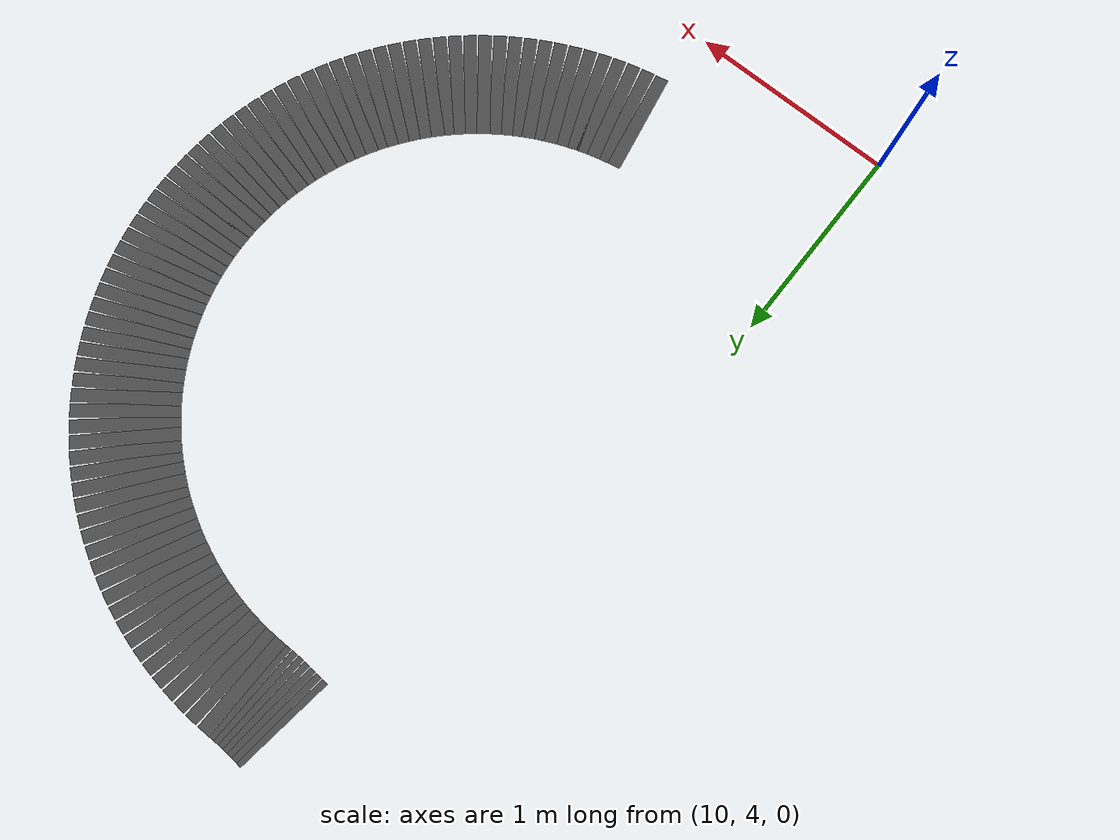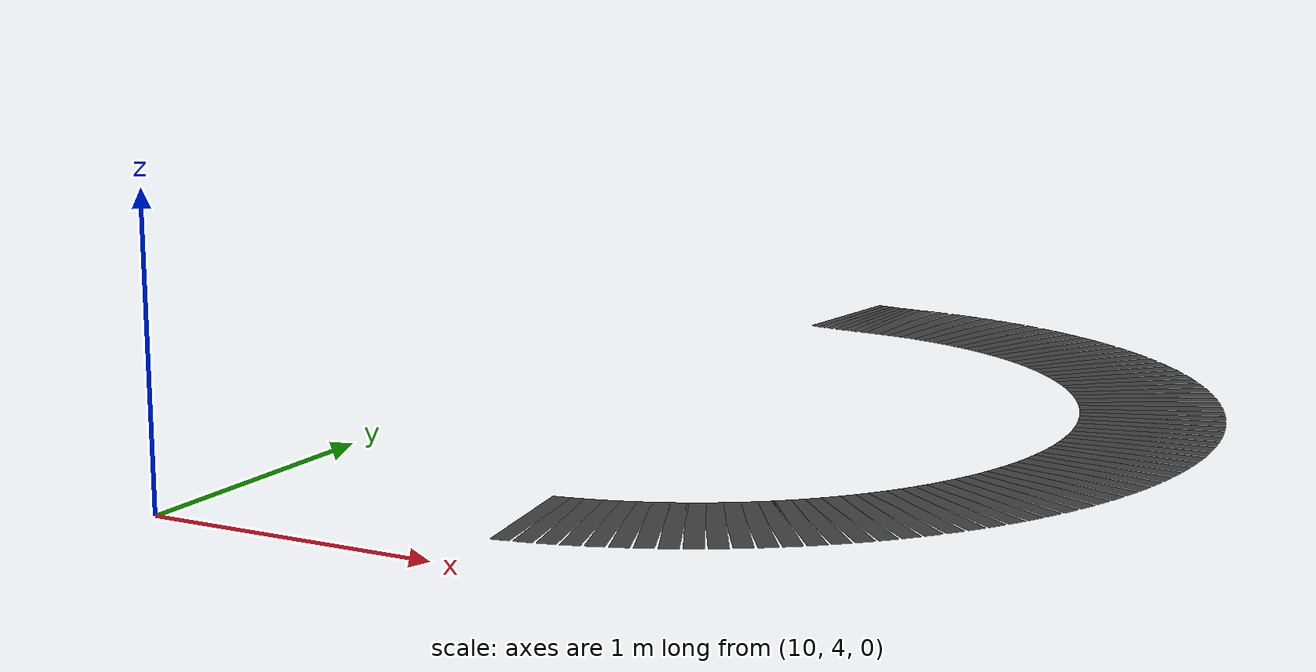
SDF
<sdf version="1.7">
 <model name="default">
  <model name="road_seg_63">
   <static>1</static>
   <link name="road_link">
    <visual name="road_visual">
     <geometry><box><size>0.062632 0.5 0.0001</size></box></geometry>
     <material>
      <script>
       <uri>model://road_material/materials/scripts</uri>
       <uri>model://road_material/materials/textures</uri>
       <name>MyRoad/Road</name>
      </script>
     </material>
    </visual>
    <collision name="road_collision"><geometry><box><size>0.062632 0.5 0.0001</size></box></geometry></collision>
   </link>
   <pose>11.0055 4.52546 0 0 -0 0.178951</pose>
  </model>
  <model name="road_seg_64">
   <static>1</static>
   <link name="road_link">
    <visual name="road_visual">
     <geometry><box><size>0.062632 0.5 0.0001</size></box></geometry>
     <material>
      <script>
       <uri>model://road_material/materials/scripts</uri>
       <uri>model://road_material/materials/textures</uri>
       <name>MyRoad/Road</name>
      </script>
     </material>
    </visual>
    <collision name="road_collision"><geometry><box><size>0.062632 0.5 0.0001</size></box></geometry></collision>
   </link>
   <pose>11.0669 4.53783 0 0 -0 0.218718</pose>
  </model>
  <model name="road_seg_65">
   <static>1</static>
   <link name="road_link">
    <visual name="road_visual">
     <geometry><box><size>0.062632 0.5 0.0001</size></box></geometry>
     <material>
      <script>
       <uri>model://road_material/materials/scripts</uri>
       <uri>model://road_material/materials/textures</uri>
       <name>MyRoad/Road</name>
      </script>
     </material>
    </visual>
    <collision name="road_collision"><geometry><box><size>0.062632 0.5 0.0001</size></box></geometry></collision>
   </link>
   <pose>11.1278 4.55263 0 0 -0 0.258485</pose>
  </model>
  <model name="road_seg_66">
   <static>1</static>
   <link name="road_link">
    <visual name="road_visual">
     <geometry><box><size>0.062632 0.5 0.0001</size></box></geometry>
     <material>
      <script>
       <uri>model://road_material/materials/scripts</uri>
       <uri>model://road_material/materials/textures</uri>
       <name>MyRoad/Road</name>
      </script>
     </material>
    </visual>
    <collision name="road_collision"><geometry><box><size>0.062632 0.5 0.0001</size></box></geometry></collision>
   </link>
   <pose>11.188 4.56983 0 0 -0 0.298252</pose>
  </model>
  <model name="road_seg_67">
   <static>1</static>
   <link name="road_link">
    <visual name="road_visual">
     <geometry><box><size>0.062632 0.5 0.0001</size></box></geometry>
     <material>
      <script>
       <uri>model://road_material/materials/scripts</uri>
       <uri>model://road_material/materials/textures</uri>
       <name>MyRoad/Road</name>
      </script>
     </material>
    </visual>
    <collision name="road_collision"><geometry><box><size>0.062632 0.5 0.0001</size></box></geometry></collision>
   </link>
   <pose>11.2475 4.58942 0 0 -0 0.338019</pose>
  </model>
  <model name="road_seg_68">
   <static>1</static>
   <link name="road_link">
    <visual name="road_visual">
     <geometry><box><size>0.062632 0.5 0.0001</size></box></geometry>
     <material>
      <script>
       <uri>model://road_material/materials/scripts</uri>
       <uri>model://road_material/materials/textures</uri>
       <name>MyRoad/Road</name>
      </script>
     </material>
    </visual>
    <collision name="road_collision"><geometry><box><size>0.062632 0.5 0.0001</size></box></geometry></collision>
   </link>
   <pose>11.3061 4.61136 0 0 -0 0.377786</pose>
  </model>
  <model name="road_seg_69">
   <static>1</static>
   <link name="road_link">
    <visual name="road_visual">
     <geometry><box><size>0.062632 0.5 0.0001</size></box></geometry>
     <material>
      <script>
       <uri>model://road_material/materials/scripts</uri>
       <uri>model://road_material/materials/textures</uri>
       <name>MyRoad/Road</name>
      </script>
     </material>
    </visual>
    <collision name="road_collision"><geometry><box><size>0.062632 0.5 0.0001</size></box></geometry></collision>
   </link>
   <pose>11.3638 4.63561 0 0 -0 0.417553</pose>
  </model>
  <model name="road_seg_70">
   <static>1</static>
   <link name="road_link">
    <visual name="road_visual">
     <geometry><box><size>0.062632 0.5 0.0001</size></box></geometry>
     <material>
      <script>
       <uri>model://road_material/materials/scripts</uri>
       <uri>model://road_material/materials/textures</uri>
       <name>MyRoad/Road</name>
      </script>
     </material>
    </visual>
    <collision name="road_collision"><geometry><box><size>0.062632 0.5 0.0001</size></box></geometry></collision>
   </link>
   <pose>11.4206 4.66214 0 0 -0 0.45732</pose>
  </model>
  <model name="road_seg_71">
   <static>1</static>
   <link name="road_link">
    <visual name="road_visual">
     <geometry><box><size>0.062632 0.5 0.0001</size></box></geometry>
     <material>
      <script>
       <uri>model://road_material/materials/scripts</uri>
       <uri>model://road_material/materials/textures</uri>
       <name>MyRoad/Road</name>
      </script>
     </material>
    </visual>
    <collision name="road_collision"><geometry><box><size>0.062632 0.5 0.0001</size></box></geometry></collision>
   </link>
   <pose>11.4762 4.6909 0 0 -0 0.497087</pose>
  </model>
  <model name="road_seg_72">
   <static>1</static>
   <link name="road_link">
    <visual name="road_visual">
     <geometry><box><size>0.062632 0.5 0.0001</size></box></geometry>
     <material>
      <script>
       <uri>model://road_material/materials/scripts</uri>
       <uri>model://road_material/materials/textures</uri>
       <name>MyRoad/Road</name>
      </script>
     </material>
    </visual>
    <collision name="road_collision"><geometry><box><size>0.062632 0.5 0.0001</size></box></geometry></collision>
   </link>
   <pose>11.5306 4.72185 0 0 -0 0.536854</pose>
  </model>
  <model name="road_seg_73">
   <static>1</static>
   <link name="road_link">
    <visual name="road_visual">
     <geometry><box><size>0.062632 0.5 0.0001</size></box></geometry>
     <material>
      <script>
       <uri>model://road_material/materials/scripts</uri>
       <uri>model://road_material/materials/textures</uri>
       <name>MyRoad/Road</name>
      </script>
     </material>
    </visual>
    <collision name="road_collision"><geometry><box><size>0.062632 0.5 0.0001</size></box></geometry></collision>
   </link>
   <pose>11.5838 4.75494 0 0 -0 0.576621</pose>
  </model>
  <model name="road_seg_74">
   <static>1</static>
   <link name="road_link">
    <visual name="road_visual">
     <geometry><box><size>0.062632 0.5 0.0001</size></box></geometry>
     <material>
      <script>
       <uri>model://road_material/materials/scripts</uri>
       <uri>model://road_material/materials/textures</uri>
       <name>MyRoad/Road</name>
      </script>
     </material>
    </visual>
    <collision name="road_collision"><geometry><box><size>0.062632 0.5 0.0001</size></box></geometry></collision>
   </link>
   <pose>11.6356 4.79011 0 0 -0 0.616388</pose>
  </model>
  <model name="road_seg_75">
   <static>1</static>
   <link name="road_link">
    <visual name="road_visual">
     <geometry><box><size>0.062632 0.5 0.0001</size></box></geometry>
     <material>
      <script>
       <uri>model://road_material/materials/scripts</uri>
       <uri>model://road_material/materials/textures</uri>
       <name>MyRoad/Road</name>
      </script>
     </material>
    </visual>
    <collision name="road_collision"><geometry><box><size>0.062632 0.5 0.0001</size></box></geometry></collision>
   </link>
   <pose>11.686 4.82732 0 0 -0 0.656155</pose>
  </model>
  <model name="road_seg_76">
   <static>1</static>
   <link name="road_link">
    <visual name="road_visual">
     <geometry><box><size>0.062632 0.5 0.0001</size></box></geometry>
     <material>
      <script>
       <uri>model://road_material/materials/scripts</uri>
       <uri>model://road_material/materials/textures</uri>
       <name>MyRoad/Road</name>
      </script>
     </material>
    </visual>
    <collision name="road_collision"><geometry><box><size>0.062632 0.5 0.0001</size></box></geometry></collision>
   </link>
   <pose>11.7348 4.8665 0 0 -0 0.695922</pose>
  </model>
  <model name="road_seg_77">
   <static>1</static>
   <link name="road_link">
    <visual name="road_visual">
     <geometry><box><size>0.062632 0.5 0.0001</size></box></geometry>
     <material>
      <script>
       <uri>model://road_material/materials/scripts</uri>
       <uri>model://road_material/materials/textures</uri>
       <name>MyRoad/Road</name>
      </script>
     </material>
    </visual>
    <collision name="road_collision"><geometry><box><size>0.062632 0.5 0.0001</size></box></geometry></collision>
   </link>
   <pose>11.7821 4.9076 0 0 -0 0.735689</pose>
  </model>
  <model name="road_seg_78">
   <static>1</static>
   <link name="road_link">
    <visual name="road_visual">
     <geometry><box><size>0.062632 0.5 0.0001</size></box></geometry>
     <material>
      <script>
       <uri>model://road_material/materials/scripts</uri>
       <uri>model://road_material/materials/textures</uri>
       <name>MyRoad/Road</name>
      </script>
     </material>
    </visual>
    <collision name="road_collision"><geometry><box><size>0.062632 0.5 0.0001</size></box></geometry></collision>
   </link>
   <pose>11.8276 4.95053 0 0 -0 0.775456</pose>
  </model>
  <model name="road_seg_79">
   <static>1</static>
   <link name="road_link">
    <visual name="road_visual">
     <geometry><box><size>0.062632 0.5 0.0001</size></box></geometry>
     <material>
      <script>
       <uri>model://road_material/materials/scripts</uri>
       <uri>model://road_material/materials/textures</uri>
       <name>MyRoad/Road</name>
      </script>
     </material>
    </visual>
    <collision name="road_collision"><geometry><box><size>0.062632 0.5 0.0001</size></box></geometry></collision>
   </link>
   <pose>11.8715 4.99525 0 0 -0 0.815223</pose>
  </model>
  <model name="road_seg_80">
   <static>1</static>
   <link name="road_link">
    <visual name="road_visual">
     <geometry><box><size>0.062632 0.5 0.0001</size></box></geometry>
     <material>
      <script>
       <uri>model://road_material/materials/scripts</uri>
       <uri>model://road_material/materials/textures</uri>
       <name>MyRoad/Road</name>
      </script>
     </material>
    </visual>
    <collision name="road_collision"><geometry><box><size>0.062632 0.5 0.0001</size></box></geometry></collision>
   </link>
   <pose>11.9135 5.04168 0 0 -0 0.85499</pose>
  </model>
  <model name="road_seg_81">
   <static>1</static>
   <link name="road_link">
    <visual name="road_visual">
     <geometry><box><size>0.062632 0.5 0.0001</size></box></geometry>
     <material>
      <script>
       <uri>model://road_material/materials/scripts</uri>
       <uri>model://road_material/materials/textures</uri>
       <name>MyRoad/Road</name>
      </script>
     </material>
    </visual>
    <collision name="road_collision"><geometry><box><size>0.062632 0.5 0.0001</size></box></geometry></collision>
   </link>
   <pose>11.9536 5.08973 0 0 -0 0.894757</pose>
  </model>
  <model name="road_seg_82">
   <static>1</static>
   <link name="road_link">
    <visual name="road_visual">
     <geometry><box><size>0.062632 0.5 0.0001</size></box></geometry>
     <material>
      <script>
       <uri>model://road_material/materials/scripts</uri>
       <uri>model://road_material/materials/textures</uri>
       <name>MyRoad/Road</name>
      </script>
     </material>
    </visual>
    <collision name="road_collision"><geometry><box><size>0.062632 0.5 0.0001</size></box></geometry></collision>
   </link>
   <pose>11.9918 5.13935 0 0 -0 0.934524</pose>
  </model>
  <model name="road_seg_83">
   <static>1</static>
   <link name="road_link">
    <visual name="road_visual">
     <geometry><box><size>0.062632 0.5 0.0001</size></box></geometry>
     <material>
      <script>
       <uri>model://road_material/materials/scripts</uri>
       <uri>model://road_material/materials/textures</uri>
       <name>MyRoad/Road</name>
      </script>
     </material>
    </visual>
    <collision name="road_collision"><geometry><box><size>0.062632 0.5 0.0001</size></box></geometry></collision>
   </link>
   <pose>12.028 5.19045 0 0 -0 0.974291</pose>
  </model>
  <model name="road_seg_84">
   <static>1</static>
   <link name="road_link">
    <visual name="road_visual">
     <geometry><box><size>0.062632 0.5 0.0001</size></box></geometry>
     <material>
      <script>
       <uri>model://road_material/materials/scripts</uri>
       <uri>model://road_material/materials/textures</uri>
       <name>MyRoad/Road</name>
      </script>
     </material>
    </visual>
    <collision name="road_collision"><geometry><box><size>0.062632 0.5 0.0001</size></box></geometry></collision>
   </link>
   <pose>12.0622 5.24294 0 0 -0 1.01406</pose>
  </model>
  <model name="road_seg_85">
   <static>1</static>
   <link name="road_link">
    <visual name="road_visual">
     <geometry><box><size>0.062632 0.5 0.0001</size></box></geometry>
     <material>
      <script>
       <uri>model://road_material/materials/scripts</uri>
       <uri>model://road_material/materials/textures</uri>
       <name>MyRoad/Road</name>
      </script>
     </material>
    </visual>
    <collision name="road_collision"><geometry><box><size>0.062632 0.5 0.0001</size></box></geometry></collision>
   </link>
   <pose>12.0942 5.29675 0 0 -0 1.05383</pose>
  </model>
  <model name="road_seg_86">
   <static>1</static>
   <link name="road_link">
    <visual name="road_visual">
     <geometry><box><size>0.062632 0.5 0.0001</size></box></geometry>
     <material>
      <script>
       <uri>model://road_material/materials/scripts</uri>
       <uri>model://road_material/materials/textures</uri>
       <name>MyRoad/Road</name>
      </script>
     </material>
    </visual>
    <collision name="road_collision"><geometry><box><size>0.062632 0.5 0.0001</size></box></geometry></collision>
   </link>
   <pose>12.1241 5.35179 0 0 -0 1.09359</pose>
  </model>
  <model name="road_seg_87">
   <static>1</static>
   <link name="road_link">
    <visual name="road_visual">
     <geometry><box><size>0.062632 0.5 0.0001</size></box></geometry>
     <material>
      <script>
       <uri>model://road_material/materials/scripts</uri>
       <uri>model://road_material/materials/textures</uri>
       <name>MyRoad/Road</name>
      </script>
     </material>
    </visual>
    <collision name="road_collision"><geometry><box><size>0.062632 0.5 0.0001</size></box></geometry></collision>
   </link>
   <pose>12.1517 5.40798 0 0 -0 1.13336</pose>
  </model>
  <model name="road_seg_88">
   <static>1</static>
   <link name="road_link">
    <visual name="road_visual">
     <geometry><box><size>0.062632 0.5 0.0001</size></box></geometry>
     <material>
      <script>
       <uri>model://road_material/materials/scripts</uri>
       <uri>model://road_material/materials/textures</uri>
       <name>MyRoad/Road</name>
      </script>
     </material>
    </visual>
    <collision name="road_collision"><geometry><box><size>0.062632 0.5 0.0001</size></box></geometry></collision>
   </link>
   <pose>12.1771 5.46522 0 0 -0 1.17313</pose>
  </model>
  <model name="road_seg_89">
   <static>1</static>
   <link name="road_link">
    <visual name="road_visual">
     <geometry><box><size>0.062632 0.5 0.0001</size></box></geometry>
     <material>
      <script>
       <uri>model://road_material/materials/scripts</uri>
       <uri>model://road_material/materials/textures</uri>
       <name>MyRoad/Road</name>
      </script>
     </material>
    </visual>
    <collision name="road_collision"><geometry><box><size>0.062632 0.5 0.0001</size></box></geometry></collision>
   </link>
   <pose>12.2002 5.52342 0 0 -0 1.21289</pose>
  </model>
  <model name="road_seg_90">
   <static>1</static>
   <link name="road_link">
    <visual name="road_visual">
     <geometry><box><size>0.062632 0.5 0.0001</size></box></geometry>
     <material>
      <script>
       <uri>model://road_material/materials/scripts</uri>
       <uri>model://road_material/materials/textures</uri>
       <name>MyRoad/Road</name>
      </script>
     </material>
    </visual>
    <collision name="road_collision"><geometry><box><size>0.062632 0.5 0.0001</size></box></geometry></collision>
   </link>
   <pose>12.221 5.5825 0 0 -0 1.25266</pose>
  </model>
  <model name="road_seg_91">
   <static>1</static>
   <link name="road_link">
    <visual name="road_visual">
     <geometry><box><size>0.062632 0.5 0.0001</size></box></geometry>
     <material>
      <script>
       <uri>model://road_material/materials/scripts</uri>
       <uri>model://road_material/materials/textures</uri>
       <name>MyRoad/Road</name>
      </script>
     </material>
    </visual>
    <collision name="road_collision"><geometry><box><size>0.062632 0.5 0.0001</size></box></geometry></collision>
   </link>
   <pose>12.2394 5.64235 0 0 -0 1.29243</pose>
  </model>
  <model name="road_seg_92">
   <static>1</static>
   <link name="road_link">
    <visual name="road_visual">
     <geometry><box><size>0.062632 0.5 0.0001</size></box></geometry>
     <material>
      <script>
       <uri>model://road_material/materials/scripts</uri>
       <uri>model://road_material/materials/textures</uri>
       <name>MyRoad/Road</name>
      </script>
     </material>
    </visual>
    <collision name="road_collision"><geometry><box><size>0.062632 0.5 0.0001</size></box></geometry></collision>
   </link>
   <pose>12.2554 5.70289 0 0 -0 1.33219</pose>
  </model>
  <model name="road_seg_93">
   <static>1</static>
   <link name="road_link">
    <visual name="road_visual">
     <geometry><box><size>0.062632 0.5 0.0001</size></box></geometry>
     <material>
      <script>
       <uri>model://road_material/materials/scripts</uri>
       <uri>model://road_material/materials/textures</uri>
       <name>MyRoad/Road</name>
      </script>
     </material>
    </visual>
    <collision name="road_collision"><geometry><box><size>0.062632 0.5 0.0001</size></box></geometry></collision>
   </link>
   <pose>12.269 5.76402 0 0 -0 1.37196</pose>
  </model>
  <model name="road_seg_94">
   <static>1</static>
   <link name="road_link">
    <visual name="road_visual">
     <geometry><box><size>0.062632 0.5 0.0001</size></box></geometry>
     <material>
      <script>
       <uri>model://road_material/materials/scripts</uri>
       <uri>model://road_material/materials/textures</uri>
       <name>MyRoad/Road</name>
      </script>
     </material>
    </visual>
    <collision name="road_collision"><geometry><box><size>0.062632 0.5 0.0001</size></box></geometry></collision>
   </link>
   <pose>12.2801 5.82564 0 0 -0 1.41173</pose>
  </model>
  <model name="road_seg_95">
   <static>1</static>
   <link name="road_link">
    <visual name="road_visual">
     <geometry><box><size>0.062632 0.5 0.0001</size></box></geometry>
     <material>
      <script>
       <uri>model://road_material/materials/scripts</uri>
       <uri>model://road_material/materials/textures</uri>
       <name>MyRoad/Road</name>
      </script>
     </material>
    </visual>
    <collision name="road_collision"><geometry><box><size>0.062632 0.5 0.0001</size></box></geometry></collision>
   </link>
   <pose>12.2888 5.88765 0 0 -0 1.4515</pose>
  </model>
  <model name="road_seg_96">
   <static>1</static>
   <link name="road_link">
    <visual name="road_visual">
     <geometry><box><size>0.062632 0.5 0.0001</size></box></geometry>
     <material>
      <script>
       <uri>model://road_material/materials/scripts</uri>
       <uri>model://road_material/materials/textures</uri>
       <name>MyRoad/Road</name>
      </script>
     </material>
    </visual>
    <collision name="road_collision"><geometry><box><size>0.062632 0.5 0.0001</size></box></geometry></collision>
   </link>
   <pose>12.295 5.94996 0 0 -0 1.49126</pose>
  </model>
  <model name="road_seg_97">
   <static>1</static>
   <link name="road_link">
    <visual name="road_visual">
     <geometry><box><size>0.062632 0.5 0.0001</size></box></geometry>
     <material>
      <script>
       <uri>model://road_material/materials/scripts</uri>
       <uri>model://road_material/materials/textures</uri>
       <name>MyRoad/Road</name>
      </script>
     </material>
    </visual>
    <collision name="road_collision"><geometry><box><size>0.062632 0.5 0.0001</size></box></geometry></collision>
   </link>
   <pose>12.2988 6.01247 0 0 -0 1.53103</pose>
  </model>
  <model name="road_seg_98">
   <static>1</static>
   <link name="road_link">
    <visual name="road_visual">
     <geometry><box><size>0.062632 0.5 0.0001</size></box></geometry>
     <material>
      <script>
       <uri>model://road_material/materials/scripts</uri>
       <uri>model://road_material/materials/textures</uri>
       <name>MyRoad/Road</name>
      </script>
     </material>
    </visual>
    <collision name="road_collision"><geometry><box><size>0.062632 0.5 0.0001</size></box></geometry></collision>
   </link>
   <pose>12.3 6.07508 0 0 -0 1.5708</pose>
  </model>
  <model name="road_seg_99">
   <static>1</static>
   <link name="road_link">
    <visual name="road_visual">
     <geometry><box><size>0.062632 0.5 0.0001</size></box></geometry>
     <material>
      <script>
       <uri>model://road_material/materials/scripts</uri>
       <uri>model://road_material/materials/textures</uri>
       <name>MyRoad/Road</name>
      </script>
     </material>
    </visual>
    <collision name="road_collision"><geometry><box><size>0.062632 0.5 0.0001</size></box></geometry></collision>
   </link>
   <pose>12.2988 6.13769 0 0 -0 1.61056</pose>
  </model>
  <model name="road_seg_100">
   <static>1</static>
   <link name="road_link">
    <visual name="road_visual">
     <geometry><box><size>0.062632 0.5 0.0001</size></box></geometry>
     <material>
      <script>
       <uri>model://road_material/materials/scripts</uri>
       <uri>model://road_material/materials/textures</uri>
       <name>MyRoad/Road</name>
      </script>
     </material>
    </visual>
    <collision name="road_collision"><geometry><box><size>0.062632 0.5 0.0001</size></box></geometry></collision>
   </link>
   <pose>12.295 6.20019 0 0 -0 1.65033</pose>
  </model>
  <model name="road_seg_101">
   <static>1</static>
   <link name="road_link">
    <visual name="road_visual">
     <geometry><box><size>0.062632 0.5 0.0001</size></box></geometry>
     <material>
      <script>
       <uri>model://road_material/materials/scripts</uri>
       <uri>model://road_material/materials/textures</uri>
       <name>MyRoad/Road</name>
      </script>
     </material>
    </visual>
    <collision name="road_collision"><geometry><box><size>0.062632 0.5 0.0001</size></box></geometry></collision>
   </link>
   <pose>12.2888 6.2625 0 0 -0 1.6901</pose>
  </model>
  <model name="road_seg_102">
   <static>1</static>
   <link name="road_link">
    <visual name="road_visual">
     <geometry><box><size>0.062632 0.5 0.0001</size></box></geometry>
     <material>
      <script>
       <uri>model://road_material/materials/scripts</uri>
       <uri>model://road_material/materials/textures</uri>
       <name>MyRoad/Road</name>
      </script>
     </material>
    </visual>
    <collision name="road_collision"><geometry><box><size>0.062632 0.5 0.0001</size></box></geometry></collision>
   </link>
   <pose>12.2801 6.32452 0 0 -0 1.72986</pose>
  </model>
  <model name="road_seg_103">
   <static>1</static>
   <link name="road_link">
    <visual name="road_visual">
     <geometry><box><size>0.062632 0.5 0.0001</size></box></geometry>
     <material>
      <script>
       <uri>model://road_material/materials/scripts</uri>
       <uri>model://road_material/materials/textures</uri>
       <name>MyRoad/Road</name>
      </script>
     </material>
    </visual>
    <collision name="road_collision"><geometry><box><size>0.062632 0.5 0.0001</size></box></geometry></collision>
   </link>
   <pose>12.269 6.38614 0 0 -0 1.76963</pose>
  </model>
  <model name="road_seg_104">
   <static>1</static>
   <link name="road_link">
    <visual name="road_visual">
     <geometry><box><size>0.062632 0.5 0.0001</size></box></geometry>
     <material>
      <script>
       <uri>model://road_material/materials/scripts</uri>
       <uri>model://road_material/materials/textures</uri>
       <name>MyRoad/Road</name>
      </script>
     </material>
    </visual>
    <collision name="road_collision"><geometry><box><size>0.062632 0.5 0.0001</size></box></geometry></collision>
   </link>
   <pose>12.2554 6.44727 0 0 -0 1.8094</pose>
  </model>
  <model name="road_seg_105">
   <static>1</static>
   <link name="road_link">
    <visual name="road_visual">
     <geometry><box><size>0.062632 0.5 0.0001</size></box></geometry>
     <material>
      <script>
       <uri>model://road_material/materials/scripts</uri>
       <uri>model://road_material/materials/textures</uri>
       <name>MyRoad/Road</name>
      </script>
     </material>
    </visual>
    <collision name="road_collision"><geometry><box><size>0.062632 0.5 0.0001</size></box></geometry></collision>
   </link>
   <pose>12.2394 6.5078 0 0 -0 1.84917</pose>
  </model>
  <model name="road_seg_106">
   <static>1</static>
   <link name="road_link">
    <visual name="road_visual">
     <geometry><box><size>0.062632 0.5 0.0001</size></box></geometry>
     <material>
      <script>
       <uri>model://road_material/materials/scripts</uri>
       <uri>model://road_material/materials/textures</uri>
       <name>MyRoad/Road</name>
      </script>
     </material>
    </visual>
    <collision name="road_collision"><geometry><box><size>0.062632 0.5 0.0001</size></box></geometry></collision>
   </link>
   <pose>12.221 6.56766 0 0 -0 1.88893</pose>
  </model>
  <model name="road_seg_107">
   <static>1</static>
   <link name="road_link">
    <visual name="road_visual">
     <geometry><box><size>0.062632 0.5 0.0001</size></box></geometry>
     <material>
      <script>
       <uri>model://road_material/materials/scripts</uri>
       <uri>model://road_material/materials/textures</uri>
       <name>MyRoad/Road</name>
      </script>
     </material>
    </visual>
    <collision name="road_collision"><geometry><box><size>0.062632 0.5 0.0001</size></box></geometry></collision>
   </link>
   <pose>12.2002 6.62674 0 0 -0 1.9287</pose>
  </model>
  <model name="road_seg_108">
   <static>1</static>
   <link name="road_link">
    <visual name="road_visual">
     <geometry><box><size>0.062632 0.5 0.0001</size></box></geometry>
     <material>
      <script>
       <uri>model://road_material/materials/scripts</uri>
       <uri>model://road_material/materials/textures</uri>
       <name>MyRoad/Road</name>
      </script>
     </material>
    </visual>
    <collision name="road_collision"><geometry><box><size>0.062632 0.5 0.0001</size></box></geometry></collision>
   </link>
   <pose>12.1771 6.68494 0 0 -0 1.96847</pose>
  </model>
  <model name="road_seg_109">
   <static>1</static>
   <link name="road_link">
    <visual name="road_visual">
     <geometry><box><size>0.062632 0.5 0.0001</size></box></geometry>
     <material>
      <script>
       <uri>model://road_material/materials/scripts</uri>
       <uri>model://road_material/materials/textures</uri>
       <name>MyRoad/Road</name>
      </script>
     </material>
    </visual>
    <collision name="road_collision"><geometry><box><size>0.062632 0.5 0.0001</size></box></geometry></collision>
   </link>
   <pose>12.1517 6.74218 0 0 -0 2.00823</pose>
  </model>
  <model name="road_seg_110">
   <static>1</static>
   <link name="road_link">
    <visual name="road_visual">
     <geometry><box><size>0.062632 0.5 0.0001</size></box></geometry>
     <material>
      <script>
       <uri>model://road_material/materials/scripts</uri>
       <uri>model://road_material/materials/textures</uri>
       <name>MyRoad/Road</name>
      </script>
     </material>
    </visual>
    <collision name="road_collision"><geometry><box><size>0.062632 0.5 0.0001</size></box></geometry></collision>
   </link>
   <pose>12.1241 6.79836 0 0 -0 2.048</pose>
  </model>
  <model name="road_seg_111">
   <static>1</static>
   <link name="road_link">
    <visual name="road_visual">
     <geometry><box><size>0.062632 0.5 0.0001</size></box></geometry>
     <material>
      <script>
       <uri>model://road_material/materials/scripts</uri>
       <uri>model://road_material/materials/textures</uri>
       <name>MyRoad/Road</name>
      </script>
     </material>
    </visual>
    <collision name="road_collision"><geometry><box><size>0.062632 0.5 0.0001</size></box></geometry></collision>
   </link>
   <pose>12.0942 6.8534 0 0 -0 2.08777</pose>
  </model>
  <model name="road_seg_112">
   <static>1</static>
   <link name="road_link">
    <visual name="road_visual">
     <geometry><box><size>0.062632 0.5 0.0001</size></box></geometry>
     <material>
      <script>
       <uri>model://road_material/materials/scripts</uri>
       <uri>model://road_material/materials/textures</uri>
       <name>MyRoad/Road</name>
      </script>
     </material>
    </visual>
    <collision name="road_collision"><geometry><box><size>0.062632 0.5 0.0001</size></box></geometry></collision>
   </link>
   <pose>12.0622 6.90722 0 0 -0 2.12753</pose>
  </model>
  <model name="road_seg_113">
   <static>1</static>
   <link name="road_link">
    <visual name="road_visual">
     <geometry><box><size>0.062632 0.5 0.0001</size></box></geometry>
     <material>
      <script>
       <uri>model://road_material/materials/scripts</uri>
       <uri>model://road_material/materials/textures</uri>
       <name>MyRoad/Road</name>
      </script>
     </material>
    </visual>
    <collision name="road_collision"><geometry><box><size>0.062632 0.5 0.0001</size></box></geometry></collision>
   </link>
   <pose>12.028 6.95971 0 0 -0 2.1673</pose>
  </model>
  <model name="road_seg_114">
   <static>1</static>
   <link name="road_link">
    <visual name="road_visual">
     <geometry><box><size>0.062632 0.5 0.0001</size></box></geometry>
     <material>
      <script>
       <uri>model://road_material/materials/scripts</uri>
       <uri>model://road_material/materials/textures</uri>
       <name>MyRoad/Road</name>
      </script>
     </material>
    </visual>
    <collision name="road_collision"><geometry><box><size>0.062632 0.5 0.0001</size></box></geometry></collision>
   </link>
   <pose>11.9918 7.01081 0 0 -0 2.20707</pose>
  </model>
  <model name="road_seg_115">
   <static>1</static>
   <link name="road_link">
    <visual name="road_visual">
     <geometry><box><size>0.062632 0.5 0.0001</size></box></geometry>
     <material>
      <script>
       <uri>model://road_material/materials/scripts</uri>
       <uri>model://road_material/materials/textures</uri>
       <name>MyRoad/Road</name>
      </script>
     </material>
    </visual>
    <collision name="road_collision"><geometry><box><size>0.062632 0.5 0.0001</size></box></geometry></collision>
   </link>
   <pose>11.9536 7.06042 0 0 -0 2.24684</pose>
  </model>
  <model name="road_seg_116">
   <static>1</static>
   <link name="road_link">
    <visual name="road_visual">
     <geometry><box><size>0.062632 0.5 0.0001</size></box></geometry>
     <material>
      <script>
       <uri>model://road_material/materials/scripts</uri>
       <uri>model://road_material/materials/textures</uri>
       <name>MyRoad/Road</name>
      </script>
     </material>
    </visual>
    <collision name="road_collision"><geometry><box><size>0.062632 0.5 0.0001</size></box></geometry></collision>
   </link>
   <pose>11.9135 7.10848 0 0 -0 2.2866</pose>
  </model>
  <model name="road_seg_117">
   <static>1</static>
   <link name="road_link">
    <visual name="road_visual">
     <geometry><box><size>0.062632 0.5 0.0001</size></box></geometry>
     <material>
      <script>
       <uri>model://road_material/materials/scripts</uri>
       <uri>model://road_material/materials/textures</uri>
       <name>MyRoad/Road</name>
      </script>
     </material>
    </visual>
    <collision name="road_collision"><geometry><box><size>0.062632 0.5 0.0001</size></box></geometry></collision>
   </link>
   <pose>11.8715 7.1549 0 0 -0 2.32637</pose>
  </model>
  <model name="road_seg_118">
   <static>1</static>
   <link name="road_link">
    <visual name="road_visual">
     <geometry><box><size>0.062632 0.5 0.0001</size></box></geometry>
     <material>
      <script>
       <uri>model://road_material/materials/scripts</uri>
       <uri>model://road_material/materials/textures</uri>
       <name>MyRoad/Road</name>
      </script>
     </material>
    </visual>
    <collision name="road_collision"><geometry><box><size>0.062632 0.5 0.0001</size></box></geometry></collision>
   </link>
   <pose>11.8276 7.19962 0 0 -0 2.36614</pose>
  </model>
  <model name="road_seg_119">
   <static>1</static>
   <link name="road_link">
    <visual name="road_visual">
     <geometry><box><size>0.062632 0.5 0.0001</size></box></geometry>
     <material>
      <script>
       <uri>model://road_material/materials/scripts</uri>
       <uri>model://road_material/materials/textures</uri>
       <name>MyRoad/Road</name>
      </script>
     </material>
    </visual>
    <collision name="road_collision"><geometry><box><size>0.062632 0.5 0.0001</size></box></geometry></collision>
   </link>
   <pose>11.7821 7.24256 0 0 -0 2.4059</pose>
  </model>
  <model name="road_seg_120">
   <static>1</static>
   <link name="road_link">
    <visual name="road_visual">
     <geometry><box><size>0.062632 0.5 0.0001</size></box></geometry>
     <material>
      <script>
       <uri>model://road_material/materials/scripts</uri>
       <uri>model://road_material/materials/textures</uri>
       <name>MyRoad/Road</name>
      </script>
     </material>
    </visual>
    <collision name="road_collision"><geometry><box><size>0.062632 0.5 0.0001</size></box></geometry></collision>
   </link>
   <pose>11.7348 7.28365 0 0 -0 2.44567</pose>
  </model>
  <model name="road_seg_121">
   <static>1</static>
   <link name="road_link">
    <visual name="road_visual">
     <geometry><box><size>0.062632 0.5 0.0001</size></box></geometry>
     <material>
      <script>
       <uri>model://road_material/materials/scripts</uri>
       <uri>model://road_material/materials/textures</uri>
       <name>MyRoad/Road</name>
      </script>
     </material>
    </visual>
    <collision name="road_collision"><geometry><box><size>0.062632 0.5 0.0001</size></box></geometry></collision>
   </link>
   <pose>11.686 7.32283 0 0 -0 2.48544</pose>
  </model>
  <model name="road_seg_122">
   <static>1</static>
   <link name="road_link">
    <visual name="road_visual">
     <geometry><box><size>0.062632 0.5 0.0001</size></box></geometry>
     <material>
      <script>
       <uri>model://road_material/materials/scripts</uri>
       <uri>model://road_material/materials/textures</uri>
       <name>MyRoad/Road</name>
      </script>
     </material>
    </visual>
    <collision name="road_collision"><geometry><box><size>0.062632 0.5 0.0001</size></box></geometry></collision>
   </link>
   <pose>11.6356 7.36004 0 0 -0 2.5252</pose>
  </model>
  <model name="road_seg_123">
   <static>1</static>
   <link name="road_link">
    <visual name="road_visual">
     <geometry><box><size>0.062632 0.5 0.0001</size></box></geometry>
     <material>
      <script>
       <uri>model://road_material/materials/scripts</uri>
       <uri>model://road_material/materials/textures</uri>
       <name>MyRoad/Road</name>
      </script>
     </material>
    </visual>
    <collision name="road_collision"><geometry><box><size>0.062632 0.5 0.0001</size></box></geometry></collision>
   </link>
   <pose>11.5838 7.39522 0 0 -0 2.56497</pose>
  </model>
  <model name="road_seg_124">
   <static>1</static>
   <link name="road_link">
    <visual name="road_visual">
     <geometry><box><size>0.062632 0.5 0.0001</size></box></geometry>
     <material>
      <script>
       <uri>model://road_material/materials/scripts</uri>
       <uri>model://road_material/materials/textures</uri>
       <name>MyRoad/Road</name>
      </script>
     </material>
    </visual>
    <collision name="road_collision"><geometry><box><size>0.062632 0.5 0.0001</size></box></geometry></collision>
   </link>
   <pose>11.5306 7.42831 0 0 -0 2.60474</pose>
  </model>
  <model name="road_seg_125">
   <static>1</static>
   <link name="road_link">
    <visual name="road_visual">
     <geometry><box><size>0.062632 0.5 0.0001</size></box></geometry>
     <material>
      <script>
       <uri>model://road_material/materials/scripts</uri>
       <uri>model://road_material/materials/textures</uri>
       <name>MyRoad/Road</name>
      </script>
     </material>
    </visual>
    <collision name="road_collision"><geometry><box><size>0.062632 0.5 0.0001</size></box></geometry></collision>
   </link>
   <pose>11.4762 7.45926 0 0 -0 2.64451</pose>
  </model>
  <model name="road_seg_126">
   <static>1</static>
   <link name="road_link">
    <visual name="road_visual">
     <geometry><box><size>0.062632 0.5 0.0001</size></box></geometry>
     <material>
      <script>
       <uri>model://road_material/materials/scripts</uri>
       <uri>model://road_material/materials/textures</uri>
       <name>MyRoad/Road</name>
      </script>
     </material>
    </visual>
    <collision name="road_collision"><geometry><box><size>0.062632 0.5 0.0001</size></box></geometry></collision>
   </link>
   <pose>11.4206 7.48802 0 0 -0 2.68427</pose>
  </model>
  <model name="road_seg_127">
   <static>1</static>
   <link name="road_link">
    <visual name="road_visual">
     <geometry><box><size>0.062632 0.5 0.0001</size></box></geometry>
     <material>
      <script>
       <uri>model://road_material/materials/scripts</uri>
       <uri>model://road_material/materials/textures</uri>
       <name>MyRoad/Road</name>
      </script>
     </material>
    </visual>
    <collision name="road_collision"><geometry><box><size>0.062632 0.5 0.0001</size></box></geometry></collision>
   </link>
   <pose>11.3638 7.51455 0 0 -0 2.72404</pose>
  </model>
  <model name="road_seg_128">
   <static>1</static>
   <link name="road_link">
    <visual name="road_visual">
     <geometry><box><size>0.062632 0.5 0.0001</size></box></geometry>
     <material>
      <script>
       <uri>model://road_material/materials/scripts</uri>
       <uri>model://road_material/materials/textures</uri>
       <name>MyRoad/Road</name>
      </script>
     </material>
    </visual>
    <collision name="road_collision"><geometry><box><size>0.062632 0.5 0.0001</size></box></geometry></collision>
   </link>
   <pose>11.3061 7.5388 0 0 -0 2.76381</pose>
  </model>
  <model name="road_seg_129">
   <static>1</static>
   <link name="road_link">
    <visual name="road_visual">
     <geometry><box><size>0.062632 0.5 0.0001</size></box></geometry>
     <material>
      <script>
       <uri>model://road_material/materials/scripts</uri>
       <uri>model://road_material/materials/textures</uri>
       <name>MyRoad/Road</name>
      </script>
     </material>
    </visual>
    <collision name="road_collision"><geometry><box><size>0.062632 0.5 0.0001</size></box></geometry></collision>
   </link>
   <pose>11.2475 7.56073 0 0 -0 2.80357</pose>
  </model>
  <model name="road_seg_130">
   <static>1</static>
   <link name="road_link">
    <visual name="road_visual">
     <geometry><box><size>0.062632 0.5 0.0001</size></box></geometry>
     <material>
      <script>
       <uri>model://road_material/materials/scripts</uri>
       <uri>model://road_material/materials/textures</uri>
       <name>MyRoad/Road</name>
      </script>
     </material>
    </visual>
    <collision name="road_collision"><geometry><box><size>0.062632 0.5 0.0001</size></box></geometry></collision>
   </link>
   <pose>11.188 7.58032 0 0 -0 2.84334</pose>
  </model>
  <model name="road_seg_131">
   <static>1</static>
   <link name="road_link">
    <visual name="road_visual">
     <geometry><box><size>0.062632 0.5 0.0001</size></box></geometry>
     <material>
      <script>
       <uri>model://road_material/materials/scripts</uri>
       <uri>model://road_material/materials/textures</uri>
       <name>MyRoad/Road</name>
      </script>
     </material>
    </visual>
    <collision name="road_collision"><geometry><box><size>0.062632 0.5 0.0001</size></box></geometry></collision>
   </link>
   <pose>11.1278 7.59753 0 0 -0 2.88311</pose>
  </model>
  <model name="road_seg_132">
   <static>1</static>
   <link name="road_link">
    <visual name="road_visual">
     <geometry><box><size>0.062632 0.5 0.0001</size></box></geometry>
     <material>
      <script>
       <uri>model://road_material/materials/scripts</uri>
       <uri>model://road_material/materials/textures</uri>
       <name>MyRoad/Road</name>
      </script>
     </material>
    </visual>
    <collision name="road_collision"><geometry><box><size>0.062632 0.5 0.0001</size></box></geometry></collision>
   </link>
   <pose>11.0669 7.61233 0 0 -0 2.92287</pose>
  </model>
  <model name="road_seg_133">
   <static>1</static>
   <link name="road_link">
    <visual name="road_visual">
     <geometry><box><size>0.062632 0.5 0.0001</size></box></geometry>
     <material>
      <script>
       <uri>model://road_material/materials/scripts</uri>
       <uri>model://road_material/materials/textures</uri>
       <name>MyRoad/Road</name>
      </script>
     </material>
    </visual>
    <collision name="road_collision"><geometry><box><size>0.062632 0.5 0.0001</size></box></geometry></collision>
   </link>
   <pose>11.0055 7.6247 0 0 -0 2.96264</pose>
  </model>
  <model name="road_seg_134">
   <static>1</static>
   <link name="road_link">
    <visual name="road_visual">
     <geometry><box><size>0.062632 0.5 0.0001</size></box></geometry>
     <material>
      <script>
       <uri>model://road_material/materials/scripts</uri>
       <uri>model://road_material/materials/textures</uri>
       <name>MyRoad/Road</name>
      </script>
     </material>
    </visual>
    <collision name="road_collision"><geometry><box><size>0.062632 0.5 0.0001</size></box></geometry></collision>
   </link>
   <pose>10.9437 7.63462 0 0 -0 3.00241</pose>
  </model>
  <model name="road_seg_135">
   <static>1</static>
   <link name="road_link">
    <visual name="road_visual">
     <geometry><box><size>0.062632 0.5 0.0001</size></box></geometry>
     <material>
      <script>
       <uri>model://road_material/materials/scripts</uri>
       <uri>model://road_material/materials/textures</uri>
       <name>MyRoad/Road</name>
      </script>
     </material>
    </visual>
    <collision name="road_collision"><geometry><box><size>0.062632 0.5 0.0001</size></box></geometry></collision>
   </link>
   <pose>10.8815 7.64207 0 0 -0 3.04218</pose>
  </model>
  <model name="road_seg_136">
   <static>1</static>
   <link name="road_link">
    <visual name="road_visual">
     <geometry><box><size>0.062632 0.5 0.0001</size></box></geometry>
     <material>
      <script>
       <uri>model://road_material/materials/scripts</uri>
       <uri>model://road_material/materials/textures</uri>
       <name>MyRoad/Road</name>
      </script>
     </material>
    </visual>
    <collision name="road_collision"><geometry><box><size>0.062632 0.5 0.0001</size></box></geometry></collision>
   </link>
   <pose>10.8191 7.64704 0 0 -0 3.08194</pose>
  </model>
  <model name="road_seg_137">
   <static>1</static>
   <link name="road_link">
    <visual name="road_visual">
     <geometry><box><size>0.062632 0.5 0.0001</size></box></geometry>
     <material>
      <script>
       <uri>model://road_material/materials/scripts</uri>
       <uri>model://road_material/materials/textures</uri>
       <name>MyRoad/Road</name>
      </script>
     </material>
    </visual>
    <collision name="road_collision"><geometry><box><size>0.062632 0.5 0.0001</size></box></geometry></collision>
   </link>
   <pose>10.7565 7.64953 0 0 -0 3.12171</pose>
  </model>
  <model name="road_seg_138">
   <static>1</static>
   <link name="road_link">
    <visual name="road_visual">
     <geometry><box><size>0.031318 0.5 0.0001</size></box></geometry>
     <material>
      <script>
       <uri>model://road_material/materials/scripts</uri>
       <uri>model://road_material/materials/textures</uri>
       <name>MyRoad/Road</name>
      </script>
     </material>
    </visual>
    <collision name="road_collision"><geometry><box><size>0.031318 0.5 0.0001</size></box></geometry></collision>
   </link>
   <pose>10.7096 7.65031 0 0 -0 3.13165</pose>
  </model>
  <model name="road_seg_139">
   <static>1</static>
   <link name="road_link">
    <visual name="road_visual">
     <geometry><box><size>0.031318 0.5 0.0001</size></box></geometry>
     <material>
      <script>
       <uri>model://road_material/materials/scripts</uri>
       <uri>model://road_material/materials/textures</uri>
       <name>MyRoad/Road</name>
      </script>
     </material>
    </visual>
    <collision name="road_collision"><geometry><box><size>0.031318 0.5 0.0001</size></box></geometry></collision>
   </link>
   <pose>10.6783 7.65093 0 0 -0 3.11177</pose>
  </model>
  <model name="road_seg_140">
   <static>1</static>
   <link name="road_link">
    <visual name="road_visual">
     <geometry><box><size>0.031318 0.5 0.0001</size></box></geometry>
     <material>
      <script>
       <uri>model://road_material/materials/scripts</uri>
       <uri>model://road_material/materials/textures</uri>
       <name>MyRoad/Road</name>
      </script>
     </material>
    </visual>
    <collision name="road_collision"><geometry><box><size>0.031318 0.5 0.0001</size></box></geometry></collision>
   </link>
   <pose>10.647 7.65218 0 0 -0 3.09188</pose>
  </model>
  <model name="road_seg_141">
   <static>1</static>
   <link name="road_link">
    <visual name="road_visual">
     <geometry><box><size>0.031318 0.5 0.0001</size></box></geometry>
     <material>
      <script>
       <uri>model://road_material/materials/scripts</uri>
       <uri>model://road_material/materials/textures</uri>
       <name>MyRoad/Road</name>
      </script>
     </material>
    </visual>
    <collision name="road_collision"><geometry><box><size>0.031318 0.5 0.0001</size></box></geometry></collision>
   </link>
   <pose>10.6157 7.65405 0 0 -0 3.072</pose>
  </model>
  <model name="road_seg_142">
   <static>1</static>
   <link name="road_link">
    <visual name="road_visual">
     <geometry><box><size>0.031318 0.5 0.0001</size></box></geometry>
     <material>
      <script>
       <uri>model://road_material/materials/scripts</uri>
       <uri>model://road_material/materials/textures</uri>
       <name>MyRoad/Road</name>
      </script>
     </material>
    </visual>
    <collision name="road_collision"><geometry><box><size>0.031318 0.5 0.0001</size></box></geometry></collision>
   </link>
   <pose>10.5845 7.65653 0 0 -0 3.05212</pose>
  </model>
  <model name="road_seg_143">
   <static>1</static>
   <link name="road_link">
    <visual name="road_visual">
     <geometry><box><size>0.031318 0.5 0.0001</size></box></geometry>
     <material>
      <script>
       <uri>model://road_material/materials/scripts</uri>
       <uri>model://road_material/materials/textures</uri>
       <name>MyRoad/Road</name>
      </script>
     </material>
    </visual>
    <collision name="road_collision"><geometry><box><size>0.031318 0.5 0.0001</size></box></geometry></collision>
   </link>
   <pose>10.5533 7.65964 0 0 -0 3.03223</pose>
  </model>
  <model name="road_seg_144">
   <static>1</static>
   <link name="road_link">
    <visual name="road_visual">
     <geometry><box><size>0.031318 0.5 0.0001</size></box></geometry>
     <material>
      <script>
       <uri>model://road_material/materials/scripts</uri>
       <uri>model://road_material/materials/textures</uri>
       <name>MyRoad/Road</name>
      </script>
     </material>
    </visual>
    <collision name="road_collision"><geometry><box><size>0.031318 0.5 0.0001</size></box></geometry></collision>
   </link>
   <pose>10.5222 7.66337 0 0 -0 3.01235</pose>
  </model>
 </model>
</sdf>
